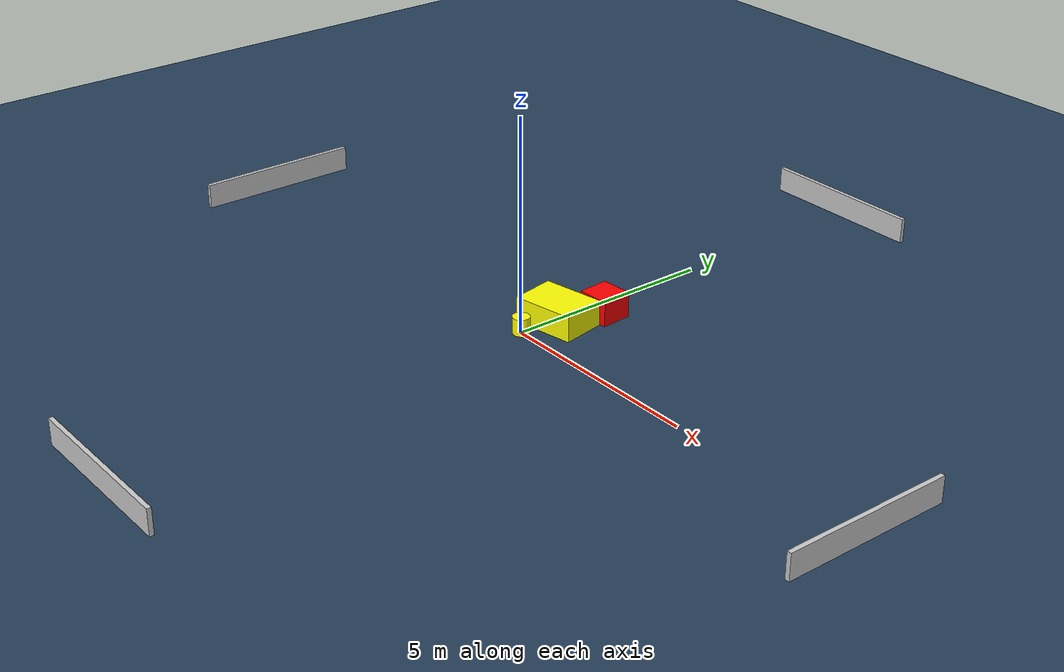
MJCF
<?xml version="1.0" ?>
<mujoco model="generated_environment">
  <option timestep="0.01" integrator="RK4" cone="elliptic"/>
  <default>
    <geom density="1"/>
  </default>
  <asset>
    <texture builtin="gradient" height="3072" name="skybox" rgb1="0.3 0.5 0.7" rgb2="0 0 0" type="skybox" width="512"/>
    <texture builtin="checker" height="300" name="groundplane" rgb1="0.2 0.3 0.4" rgb2="0.1 0.2 0.3" type="2d" width="300"/>
    <material name="groundplane" reflectance="0.2" texrepeat="5 5" texture="groundplane"/>
  </asset>
  <worldbody>
    <light dir="0 0 -1" directional="true" pos="0 0 1.5"/>
    <geom condim="3" friction="0.5 0.005 0.001" material="groundplane" name="floor" pos="0 0 0" size="0 0 0.05" type="plane"/>
    <body name="walls">
      <geom name="wall_1" condim="4" pos="-10.0 0.0 0.3" rgba="0.800000011920929 0.800000011920929 0.800000011920929 1.0" size="0.05 2.0 0.3" type="box"/>
      <geom name="wall_2" condim="4" pos="10.0 0.0 0.3" rgba="0.800000011920929 0.800000011920929 0.800000011920929 1.0" size="0.05 2.0 0.3" type="box"/>
      <geom name="wall_3" condim="4" pos="0.0 -10.0 0.3" rgba="0.800000011920929 0.800000011920929 0.800000011920929 1.0" size="2.0 0.05 0.3" type="box"/>
      <geom name="wall_4" condim="4" pos="0.0 10.0 0.3" rgba="0.800000011920929 0.800000011920929 0.800000011920929 1.0" size="2.0 0.05 0.3" type="box"/>
    </body>
    <body name="robot">
      <joint name="joint_x" type="slide" pos="0 0 0" axis="1 0 0"/>
      <joint name="joint_y" type="slide" pos="0 0 0" axis="0 1 0"/>
      <geom name="robot" type="cylinder" pos="0.0 0.0 0.2" size="0.2 0.2 0.0" mass="5.0" friction="1.0 0.005 0.0001" condim="4" rgba="1.0 1.0 0.0 1.0"/>
    </body>
    <body name="obstacle_1_movable">
      <geom name="obstacle_1_movable" condim="4" pos="0.1546552736022974 0.9059679268798017 0.3" euler="0 0 10.67812071143206" friction="0.0 0.005 0.001" rgba="1.0 1.0 0.0 1.0" size="0.7380070659450362 0.5321497419963784 0.3" type="box" mass="0.1"/>
      <joint type="free"/>
    </body>
    <body name="obstacle_2_static">
      <geom name="obstacle_2_static" condim="4" pos="0.5195848640708787 1.9303713114213377 0.3" euler="0 0 274.2845197330362" friction="0.0 0.005 0.001" rgba="1.0 0.0 0.0 1.0" size="0.36899358052045483 0.37657772683708973 0.3" type="box"/>
    </body>
  </worldbody>
  <actuator>
    <motor name="actuator_x" joint="joint_x" gear="1" ctrlrange="-1 1"/>
    <motor name="actuator_y" joint="joint_y" gear="1" ctrlrange="-1 1"/>
  </actuator>
</mujoco>
